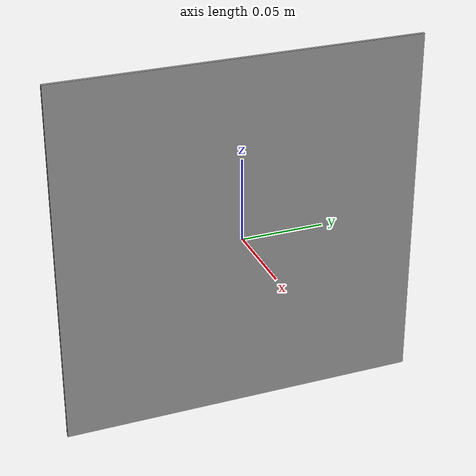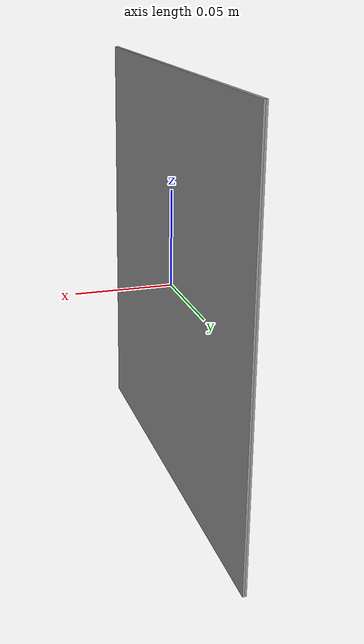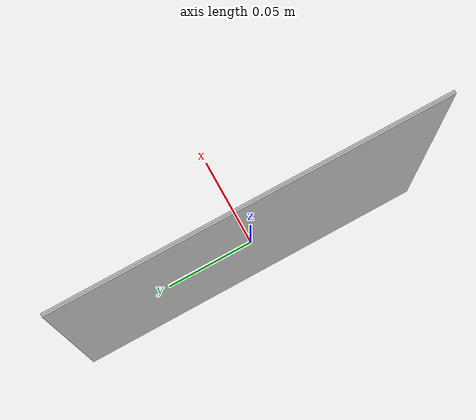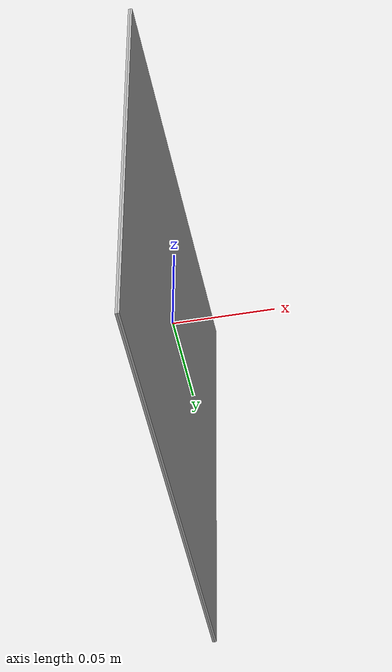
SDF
<?xml version="1.0" ?>
<sdf version="1.5">
  <model name="tc6_sensor">
    <static>true</static>
    <link name="link_pcb_top">
      <pose>-0.001 0 0 0 0 0</pose>

      <collision name="collision">
        <geometry>
          <box>
            <size>0.001 0.22 0.22</size>
          </box>
        </geometry>
      </collision>
      <visual name="visual">
        <geometry>
          <box>
            <size>0.001 0.22 0.22</size>
          </box>
        </geometry>
        <material>
          <script>
            <uri>model://tc6_sensor/materials/scripts</uri>
            <uri>model://tc6_sensor/materials/textures</uri>
            <name>tc6_sensor_top/Diffuse</name>
          </script>
        </material>
      </visual>
    </link>
    <link name="link_pcb_copper">
      <pose>0 0 0 0 0 0</pose>

      <collision name="collision">
        <geometry>
          <box>
            <size>0.001 0.22 0.22</size>
          </box>
        </geometry>
      </collision>
      <visual name="visual">
        <geometry>
          <box>
            <size>0.001 0.22 0.22</size>
          </box>
        </geometry>
        <material>
          <script>
            <uri>model://tc6_sensor/materials/scripts</uri>
            <uri>model://tc6_sensor/materials/textures</uri>
            <name>tc6_sensor_copper/Diffuse</name>
          </script>
        </material>
      </visual>
    </link>
  </model>
</sdf>
